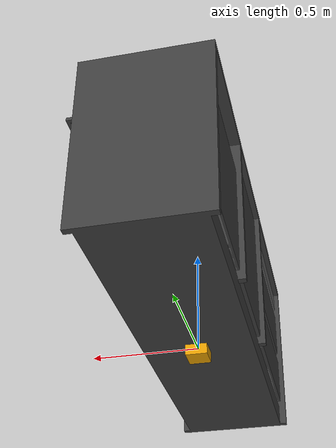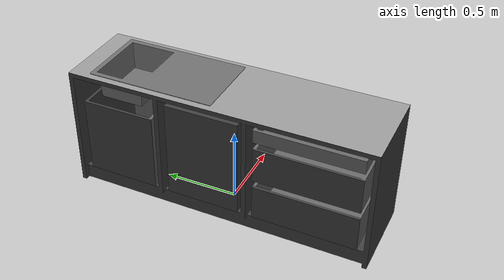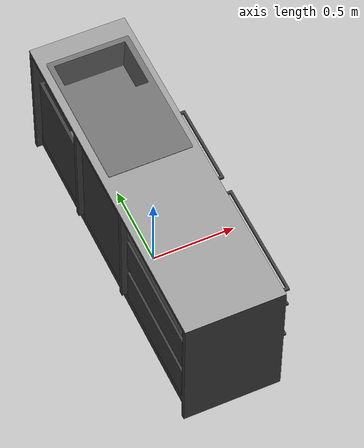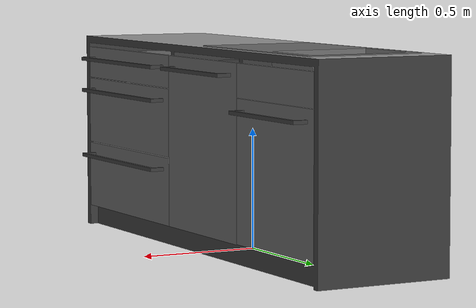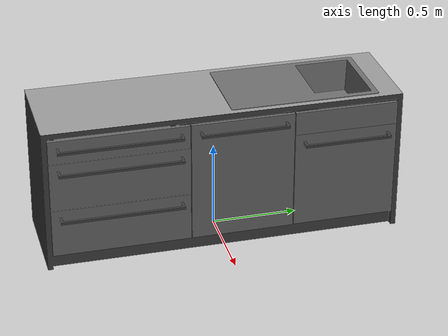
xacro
<?xml version="1.0"?>

<robot name="iai_kitchen_sink_area" xmlns:xacro="http://ros.org/wiki/xacro">

  <xacro:property name="pi" value="3.1415926535897931" />

    <link name="sink_area_footprint">

      <xacro:sphere_inertia radius="0" mass="0"/>
      <!-- ???vizualize footprint??? -->
      <visual>
        <origin xyz="0 0 0" rpy="0 0 0" />
        <geometry>
          <box size=".1 .1 .1" />
        </geometry>
      </visual>
    </link>

    <link name="sink_area_main">

      <xacro:sphere_inertia radius="0" mass="0"/>
      <!-- ???vizualize footprint??? -->
      <visual>
        <origin xyz="0 0 0" rpy="0 0 0" />
        <geometry>
          <mesh filename="package://iai_kitchen/meshes/SinkArea.dae"/>
        </geometry>
      </visual>
      <collision>
        <origin xyz="0 0 0" rpy="0 0 0" />
        <geometry>
          <mesh filename="package://iai_kitchen/meshes/SinkArea.obj"/>
        </geometry>
      </collision>
    </link>

    <joint name="sink_area_joint" type="fixed">
      <origin xyz="0 0 0.41" rpy="0 0 0" />
      <parent link="sink_area_footprint"/>
      <child link="sink_area_main"/>
    </joint>

    <!-- LEFT BLOCK -->
    <link name="sink_area_drawer_left_bottom">

      <xacro:sphere_inertia radius="0" mass="0"/>
      <!-- ???vizualize footprint??? -->
      <visual>
        <origin xyz="0 0 0" rpy="0 0 0" />
        <geometry>
          <mesh filename="package://iai_kitchen/meshes/SinkAreaMedDrawer.dae"/>
        </geometry>
      </visual>
      <collision>
        <origin xyz="0 0 0" rpy="0 0 0" />
        <geometry>
          <mesh filename="package://iai_kitchen/meshes/SinkAreaMedDrawer.obj"/>
        </geometry>
      </collision>
    </link>

    <joint name="sink_area_drawer_left_bottom_joint" type="prismatic">
      <origin xyz="0.01 -0.6 -0.18" rpy="0 0 0" />
      <parent link="sink_area_main"/>
      <child link="sink_area_drawer_left_bottom"/>
      <axis xyz="1 0 0"/>
      <limit lower="0" upper="0.48" effort="300" velocity="10"/>
    </joint>

    <link name="sink_area_drawer_left_bottom_handle">

      <xacro:sphere_inertia radius="0" mass="0"/>
      <!-- ???vizualize footprint??? -->
      <visual>
        <origin xyz="0 0 0" rpy="0 0 0" />
        <geometry>
          <mesh filename="package://iai_kitchen/meshes/SinkAreaBigHandle.dae"/>
        </geometry>
      </visual>
      <collision>
        <origin xyz="0 0 0" rpy="0 0 0" />
        <geometry>
          <mesh filename="package://iai_kitchen/meshes/SinkAreaBigHandle.obj"/>
        </geometry>
      </collision>
    </link>

    <joint name="sink_area_drawer_left_bottom_handle_joint" type="fixed">
      <origin xyz="0.3325 0 0.0925" rpy="0 0 0" />
      <parent link="sink_area_drawer_left_bottom"/>
      <child link="sink_area_drawer_left_bottom_handle"/>
    </joint>

    <link name="sink_area_drawer_left_center">

      <xacro:sphere_inertia radius="0" mass="0"/>
      <!-- ???vizualize footprint??? -->
      <visual>
        <origin xyz="0 0 0" rpy="0 0 0" />
        <geometry>
          <mesh filename="package://iai_kitchen/meshes/SinkAreaMedDrawer.dae"/>
        </geometry>
      </visual>
      <collision>
        <origin xyz="0 0 0" rpy="0 0 0" />
        <geometry>
          <mesh filename="package://iai_kitchen/meshes/SinkAreaMedDrawer.obj"/>
        </geometry>
      </collision>
    </link>

    <joint name="sink_area_drawer_left_center_joint" type="prismatic">
      <origin xyz="0.01 -0.6 0.11" rpy="0 0 0" />
      <parent link="sink_area_main"/>
      <child link="sink_area_drawer_left_center"/>
      <axis xyz="1 0 0"/>
      <limit lower="0" upper="0.48" effort="300" velocity="10"/>
    </joint>

    <link name="sink_area_drawer_left_center_handle">

      <xacro:sphere_inertia radius="0" mass="0"/>
      <visual>
        <origin xyz="0 0 0" rpy="0 0 0" />
        <geometry>
          <mesh filename="package://iai_kitchen/meshes/SinkAreaBigHandle.dae"/>
        </geometry>
      </visual>
      <collision>
        <origin xyz="0 0 0" rpy="0 0 0" />
        <geometry>
          <mesh filename="package://iai_kitchen/meshes/SinkAreaBigHandle.obj"/>
        </geometry>
      </collision>
    </link>

    <joint name="sink_area_drawer_left_center_handle_joint" type="fixed">
      <origin xyz="0.3325 0 0.0925" rpy="0 0 0" />
      <parent link="sink_area_drawer_left_center"/>
      <child link="sink_area_drawer_left_center_handle"/>
    </joint>

    <link name="sink_area_drawer_left_top">

      <xacro:sphere_inertia radius="0" mass="0"/>
      <!-- ???vizualize footprint??? -->
      <visual>
        <origin xyz="0 0 0" rpy="0 0 0" />
        <geometry>
          <mesh filename="package://iai_kitchen/meshes/SinkAreaSmallDrawer.dae"/>
        </geometry>
      </visual>
      <collision>
        <origin xyz="0 0 0" rpy="0 0 0" />
        <geometry>
          <mesh filename="package://iai_kitchen/meshes/SinkAreaSmallDrawer.obj"/>
        </geometry>
      </collision>
    </link>

    <joint name="sink_area_drawer_left_top_joint" type="prismatic">
      <origin xyz="0.01 -0.6 0.325" rpy="0 0 0" />
      <parent link="sink_area_main"/>
      <child link="sink_area_drawer_left_top"/>
      <axis xyz="1 0 0"/>
      <limit lower="0" upper="0.48" effort="300" velocity="10"/>
    </joint>

    <link name="sink_area_drawer_left_top_handle">

      <xacro:sphere_inertia radius="0" mass="0"/>
      <visual>
        <origin xyz="0 0 0" rpy="0 0 0" />
        <geometry>
          <mesh filename="package://iai_kitchen/meshes/SinkAreaBigHandle.dae"/>
        </geometry>
      </visual>
      <collision>
        <origin xyz="0 0 0" rpy="0 0 0" />
        <geometry>
          <mesh filename="package://iai_kitchen/meshes/SinkAreaBigHandle.obj"/>
        </geometry>
      </collision>
    </link>

    <joint name="sink_area_drawer_left_bottom_top_joint" type="fixed">
      <origin xyz="0.3325 0 0.0175" rpy="0 0 0" />
      <parent link="sink_area_drawer_left_top"/>
      <child link="sink_area_drawer_left_top_handle"/>
    </joint>

    <!-- DISHWASHER BLOCK -->

    <link name="sink_area_inner_dishwasher">

      <xacro:sphere_inertia radius="0" mass="0"/>
      <visual>
        <origin xyz="0 0 0" rpy="0 0 0" />
        <geometry>
          <mesh filename="package://iai_kitchen/meshes/SinkAreaInnerDishWasher.dae"/>
        </geometry>
      </visual>
      <collision>
        <origin xyz="0 0 0" rpy="0 0 0" />
        <geometry>
          <mesh filename="package://iai_kitchen/meshes/SinkAreaInnerDishWasher.obj"/>
        </geometry>
      </collision>
    </link>

    <joint name="sink_area_dishwasher_joint" type="fixed">
      <origin xyz="0.01 0.1 0.035" rpy="0 0 0" />
      <parent link="sink_area_main"/>
      <child link="sink_area_inner_dishwasher"/>
    </joint>

    <link name="sink_area_dishwasher_door">

      <xacro:sphere_inertia radius="0" mass="0"/>
      <visual>
        <origin xyz="0 0 0" rpy="0 0 0" />
        <geometry>
          <mesh filename="package://iai_kitchen/meshes/SinkAreaDishWasherDoor.dae"/>
        </geometry>
      </visual>
      <collision>
        <origin xyz="0 0 0" rpy="0 0 0" />
        <geometry>
          <mesh filename="package://iai_kitchen/meshes/SinkAreaDishWasherDoor.obj"/>
        </geometry>
      </collision>
    </link>

    <joint name="sink_area_dishwasher_door_joint" type="revolute">
      <origin xyz="0.27 0 -0.325" rpy="0 0 0" />
      <parent link="sink_area_inner_dishwasher"/>
      <child link="sink_area_dishwasher_door"/>
      <axis xyz="0 1 0"/>
      <limit lower="0" upper="${0.5*pi}" effort="300" velocity="10"/>
    </joint>

    <link name="sink_area_dishwasher_handle">

      <xacro:sphere_inertia radius="0" mass="0"/>
      <visual>
        <origin xyz="0 0 0" rpy="0 0 0" />
        <geometry>
          <mesh filename="package://iai_kitchen/meshes/SinkAreaSmallHandle.dae"/>
        </geometry>
      </visual>
      <collision>
        <origin xyz="0 0 0" rpy="0 0 0" />
        <geometry>
          <mesh filename="package://iai_kitchen/meshes/SinkAreaSmallHandle.obj"/>
        </geometry>
      </collision>
    </link>

    <joint name="sink_area_dishwasher_handle_joint" type="fixed">
      <origin xyz="0.0625 0 0.6325" rpy="0 0 0" />
      <parent link="sink_area_dishwasher_door"/>
      <child link="sink_area_dishwasher_handle"/>
    </joint>

    <!-- TRASH AREA -->

    <link name="sink_area_panel">

      <xacro:sphere_inertia radius="0" mass="0"/>
      <visual>
        <origin xyz="0 0 0" rpy="0 0 0" />
        <geometry>
          <mesh filename="package://iai_kitchen/meshes/SinkAreaPanel.dae"/>
        </geometry>
      </visual>
      <collision>
        <origin xyz="0 0 0" rpy="0 0 0" />
        <geometry>
          <mesh filename="package://iai_kitchen/meshes/SinkAreaPanel.obj"/>
        </geometry>
      </collision>
    </link>

    <joint name="sink_area_pane_joint" type="fixed">
      <origin xyz="0.28 0.7 0.325" rpy="0 0 0" />
      <parent link="sink_area_main"/>
      <child link="sink_area_panel"/>
    </joint>

    <link name="sink_area_trash">

      <xacro:sphere_inertia radius="0" mass="0"/>
      <visual>
        <origin xyz="0 0 0" rpy="0 0 0" />
        <geometry>
          <mesh filename="package://iai_kitchen/meshes/SinkAreaTrash.dae"/>
        </geometry>
      </visual>
      <collision>
        <origin xyz="0 0 0" rpy="0 0 0" />
        <geometry>
          <mesh filename="package://iai_kitchen/meshes/SinkAreaTrash.obj"/>
        </geometry>
      </collision>
    </link>

    <joint name="sink_area_trash_joint" type="prismatic">
      <origin xyz="0.01 0.7 -0.0325" rpy="0 0 0" />
      <parent link="sink_area_main"/>
      <child link="sink_area_trash"/>
      <axis xyz="1 0 0"/>
      <limit lower="0" upper="0.48" effort="300" velocity="10"/>
    </joint>

    <link name="sink_area_trash_handle">
      <xacro:sphere_inertia radius="0" mass="0"/>
      <visual>
        <origin xyz="0 0 0" rpy="0 0 0" />
        <geometry>
          <mesh filename="package://iai_kitchen/meshes/SinkAreaSmallHandle.dae"/>
        </geometry>
      </visual>
      <collision>
        <origin xyz="0 0 0" rpy="0 0 0" />
        <geometry>
          <mesh filename="package://iai_kitchen/meshes/SinkAreaSmallHandle.obj"/>
        </geometry>
      </collision>
    </link>

    <joint name="sink_area_trash_handle_joint" type="fixed">
      <origin xyz="0.3325 0.0 0.2375" rpy="0 0 0" />
      <parent link="sink_area_trash"/>
      <child link="sink_area_trash_handle"/>
    </joint>

    <link name="sink_area_sink">
      <xacro:sphere_inertia radius="0" mass="0"/>
      <visual>
        <origin xyz="0 0 0" rpy="0 0 0" />
        <geometry>
          <mesh filename="package://iai_kitchen/meshes/SinkAreaSink.dae"/>
        </geometry>
      </visual>
      <collision>
        <origin xyz="0 0 0" rpy="0 0 0" />
        <geometry>
          <mesh filename="package://iai_kitchen/meshes/SinkAreaSink.obj"/>
        </geometry>
      </collision>
    </link>

    <joint name="sink_area_sink_joint" type="fixed">
      <origin xyz="0.005 0.47 0.4414" rpy="0 0 0" />
      <parent link="sink_area_main"/>
      <child link="sink_area_sink"/>
    </joint>

</robot>
